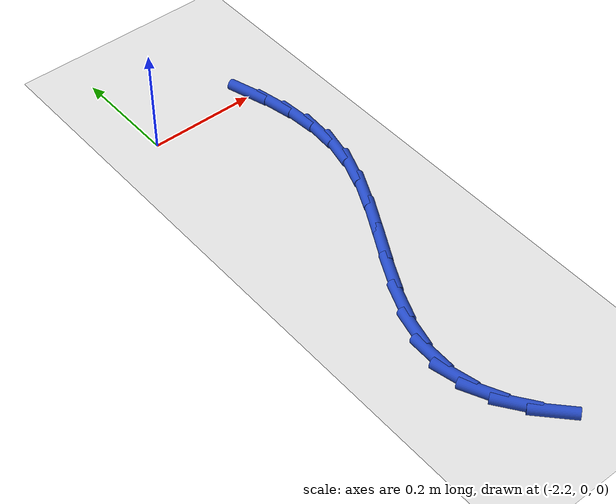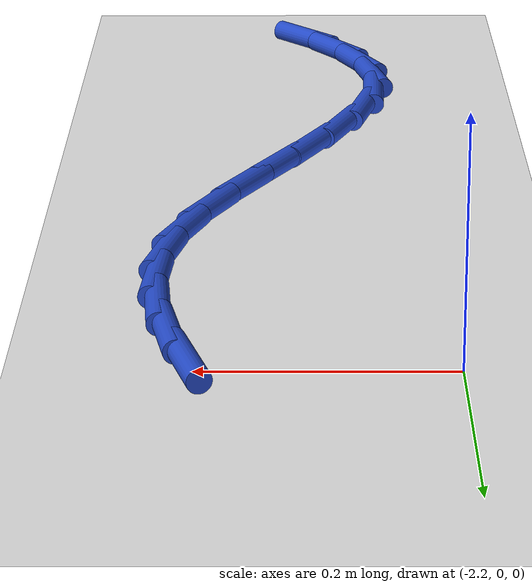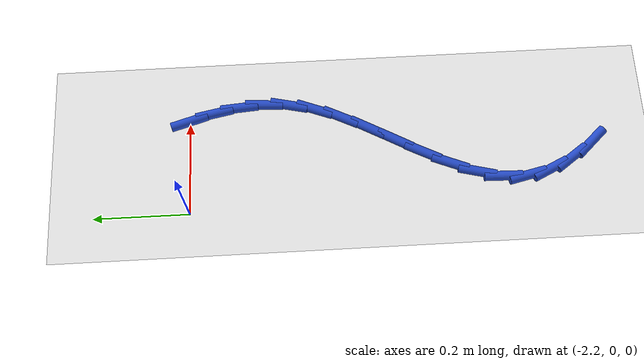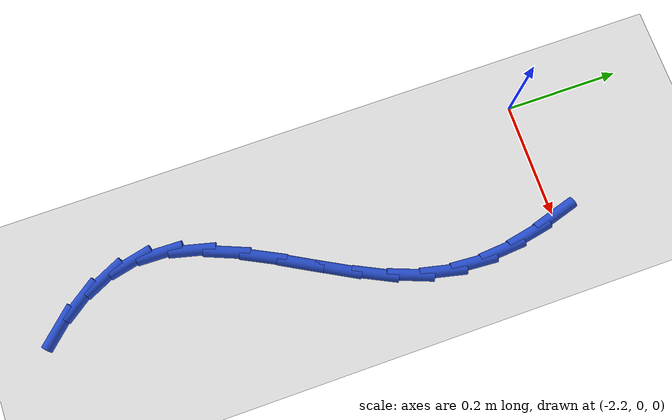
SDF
<sdf version="1.6">
 <world name="default">
  <model name="ground_plane">
   <static>1</static>
   <link name="link">
    <collision name="collision">
     <geometry><plane><normal>0 0 1</normal><size>100 100</size></plane></geometry>
     <surface><friction><ode><mu>100</mu><mu2>50</mu2></ode></friction></surface>
    </collision>
    <visual name="visual">
     <cast_shadows>0</cast_shadows>
     <geometry><plane><normal>0 0 1</normal><size>100 100</size></plane></geometry>
     <material>
      <script><uri>file://media/materials/scripts/gazebo.material</uri><name>Gazebo/WhiteGlow</name></script>
     </material>
    </visual>
   </link>
  </model>
  <model name="line">
   <link name="link_66">
    <pose>-1.995702522176754 0.0007032568263862782 0.01 0 1.57 -1.2824559200430126</pose>
    <collision name="collision">
     <geometry><cylinder><radius>0.01</radius><length>0.08</length></cylinder></geometry>
    </collision>
    <visual name="visual">
     <material>
      <script><name>Gazebo/Blue</name><uri>file://media/materials/scripts/gazebo.material</uri></script>
     </material>
     <geometry><cylinder><radius>0.01</radius><length>0.08</length></cylinder></geometry>
    </visual>
   </link>
   <link name="link_67">
    <pose>-1.9799486920463976 -0.052410349229398565 0.01 0 1.57 -1.375455066371631</pose>
    <collision name="collision">
     <geometry><cylinder><radius>0.01</radius><length>0.08</length></cylinder></geometry>
    </collision>
    <visual name="visual">
     <material>
      <script><name>Gazebo/Blue</name><uri>file://media/materials/scripts/gazebo.material</uri></script>
     </material>
     <geometry><cylinder><radius>0.01</radius><length>0.08</length></cylinder></geometry>
    </visual>
   </link>
   <link name="link_68">
    <pose>-1.9695096277837585 -0.1051690269052982 0.01 0 1.57 -1.4950427939107291</pose>
    <collision name="collision">
     <geometry><cylinder><radius>0.01</radius><length>0.08</length></cylinder></geometry>
    </collision>
    <visual name="visual">
     <material>
      <script><name>Gazebo/Blue</name><uri>file://media/materials/scripts/gazebo.material</uri></script>
     </material>
     <geometry><cylinder><radius>0.01</radius><length>0.08</length></cylinder></geometry>
    </visual>
   </link>
   <link name="link_69">
    <pose>-1.9655031022391987 -0.15795677834785757 0.01 0 1.57 1.5042831023953582</pose>
    <collision name="collision">
     <geometry><cylinder><radius>0.01</radius><length>0.08</length></cylinder></geometry>
    </collision>
    <visual name="visual">
     <material>
      <script><name>Gazebo/Blue</name><uri>file://media/materials/scripts/gazebo.material</uri></script>
     </material>
     <geometry><cylinder><radius>0.01</radius><length>0.08</length></cylinder></geometry>
    </visual>
   </link>
   <link name="link_70">
    <pose>-1.969046888263081 -0.21115760570362171 0.01 0 1.57 1.348398582609686</pose>
    <collision name="collision">
     <geometry><cylinder><radius>0.01</radius><length>0.08</length></cylinder></geometry>
    </collision>
    <visual name="visual">
     <material>
      <script><name>Gazebo/Blue</name><uri>file://media/materials/scripts/gazebo.material</uri></script>
     </material>
     <geometry><cylinder><radius>0.01</radius><length>0.08</length></cylinder></geometry>
    </visual>
   </link>
   <link name="link_71">
    <pose>-1.9812578497352393 -0.265155335803856 0.01 0 1.57 1.20521766325953</pose>
    <collision name="collision">
     <geometry><cylinder><radius>0.01</radius><length>0.08</length></cylinder></geometry>
    </collision>
    <visual name="visual">
     <material>
      <script><name>Gazebo/Blue</name><uri>file://media/materials/scripts/gazebo.material</uri></script>
     </material>
     <geometry><cylinder><radius>0.01</radius><length>0.08</length></cylinder></geometry>
    </visual>
   </link>
   <link name="link_72">
    <pose>-2.0023097268825416 -0.32015189300927144 0.01 0 1.57 1.1142915584406201</pose>
    <collision name="collision">
     <geometry><cylinder><radius>0.01</radius><length>0.08</length></cylinder></geometry>
    </collision>
    <visual name="visual">
     <material>
      <script><name>Gazebo/Blue</name><uri>file://media/materials/scripts/gazebo.material</uri></script>
     </material>
     <geometry><cylinder><radius>0.01</radius><length>0.08</length></cylinder></geometry>
    </visual>
   </link>
   <link name="link_73">
    <pose>-2.0296501833143483 -0.3758234168907561 0.01 0 1.57 1.0703374674492603</pose>
    <collision name="collision">
     <geometry><cylinder><radius>0.01</radius><length>0.08</length></cylinder></geometry>
    </collision>
    <visual name="visual">
     <material>
      <script><name>Gazebo/Blue</name><uri>file://media/materials/scripts/gazebo.material</uri></script>
     </material>
     <geometry><cylinder><radius>0.01</radius><length>0.08</length></cylinder></geometry>
    </visual>
   </link>
   <link name="link_74">
    <pose>-2.0602372223962515 -0.4317516050997377 0.01 0 1.57 1.066302233117316</pose>
    <collision name="collision">
     <geometry><cylinder><radius>0.01</radius><length>0.08</length></cylinder></geometry>
    </collision>
    <visual name="visual">
     <material>
      <script><name>Gazebo/Blue</name><uri>file://media/materials/scripts/gazebo.material</uri></script>
     </material>
     <geometry><cylinder><radius>0.01</radius><length>0.08</length></cylinder></geometry>
    </visual>
   </link>
   <link name="link_75">
    <pose>-2.091028847493844 -0.4875181552876446 0.01 0 1.57 1.1019305729436997</pose>
    <collision name="collision">
     <geometry><cylinder><radius>0.01</radius><length>0.08</length></cylinder></geometry>
    </collision>
    <visual name="visual">
     <material>
      <script><name>Gazebo/Blue</name><uri>file://media/materials/scripts/gazebo.material</uri></script>
     </material>
     <geometry><cylinder><radius>0.01</radius><length>0.08</length></cylinder></geometry>
    </visual>
   </link>
   <link name="link_76">
    <pose>-2.1189830619727177 -0.5427047651059032 0.01 0 1.57 1.1839512337991773</pose>
    <collision name="collision">
     <geometry><cylinder><radius>0.01</radius><length>0.08</length></cylinder></geometry>
    </collision>
    <visual name="visual">
     <material>
      <script><name>Gazebo/Blue</name><uri>file://media/materials/scripts/gazebo.material</uri></script>
     </material>
     <geometry><cylinder><radius>0.01</radius><length>0.08</length></cylinder></geometry>
    </visual>
   </link>
   <link name="link_77">
    <pose>-2.1410578691984665 -0.5968931322059419 0.01 0 1.57 1.3265231941990534</pose>
    <collision name="collision">
     <geometry><cylinder><radius>0.01</radius><length>0.08</length></cylinder></geometry>
    </collision>
    <visual name="visual">
     <material>
      <script><name>Gazebo/Blue</name><uri>file://media/materials/scripts/gazebo.material</uri></script>
     </material>
     <geometry><cylinder><radius>0.01</radius><length>0.08</length></cylinder></geometry>
    </visual>
   </link>
   <link name="link_78">
    <pose>-2.154211272536683 -0.649664954239189 0.01 0 1.57 1.5452217027398925</pose>
    <collision name="collision">
     <geometry><cylinder><radius>0.01</radius><length>0.08</length></cylinder></geometry>
    </collision>
    <visual name="visual">
     <material>
      <script><name>Gazebo/Blue</name><uri>file://media/materials/scripts/gazebo.material</uri></script>
     </material>
     <geometry><cylinder><radius>0.01</radius><length>0.08</length></cylinder></geometry>
    </visual>
   </link>
   <link name="link_79">
    <pose>-2.1555145817796793 -0.700614875525049 0.01 0 1.57 -1.344893946492631</pose>
    <collision name="collision">
     <geometry><cylinder><radius>0.01</radius><length>0.08</length></cylinder></geometry>
    </collision>
    <visual name="visual">
     <material>
      <script><name>Gazebo/Blue</name><uri>file://media/materials/scripts/gazebo.material</uri></script>
     </material>
     <geometry><cylinder><radius>0.01</radius><length>0.08</length></cylinder></geometry>
    </visual>
   </link>
   <link name="link_80">
    <pose>-2.144258599991956 -0.7495911450839744 0.01 0 1.57 -1.1249835691402894</pose>
    <collision name="collision">
     <geometry><cylinder><radius>0.01</radius><length>0.08</length></cylinder></geometry>
    </collision>
    <visual name="visual">
     <material>
      <script><name>Gazebo/Blue</name><uri>file://media/materials/scripts/gazebo.material</uri></script>
     </material>
     <geometry><cylinder><radius>0.01</radius><length>0.08</length></cylinder></geometry>
    </visual>
   </link>
   <link name="link_81">
    <pose>-2.1217580007215453 -0.7966732643017035 0.01 0 1.57 -0.9503053859316605</pose>
    <collision name="collision">
     <geometry><cylinder><radius>0.01</radius><length>0.08</length></cylinder></geometry>
    </collision>
    <visual name="visual">
     <material>
      <script><name>Gazebo/Blue</name><uri>file://media/materials/scripts/gazebo.material</uri></script>
     </material>
     <geometry><cylinder><radius>0.01</radius><length>0.08</length></cylinder></geometry>
    </visual>
   </link>
   <link name="link_82">
    <pose>-2.0894015349431267 -0.8419491988309646 0.01 0 1.57 -0.8177889660187503</pose>
    <collision name="collision">
     <geometry><cylinder><radius>0.01</radius><length>0.08</length></cylinder></geometry>
    </collision>
    <visual name="visual">
     <material>
      <script><name>Gazebo/Blue</name><uri>file://media/materials/scripts/gazebo.material</uri></script>
     </material>
     <geometry><cylinder><radius>0.01</radius><length>0.08</length></cylinder></geometry>
    </visual>
   </link>
  </model>
 </world>
</sdf>
